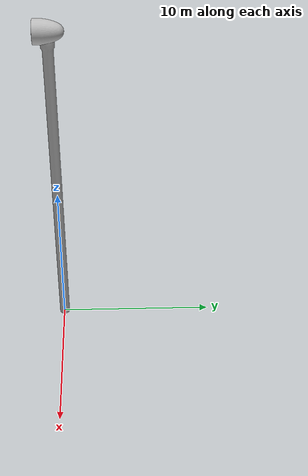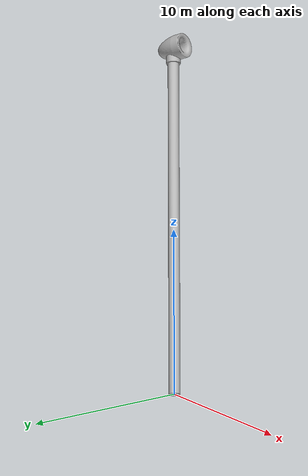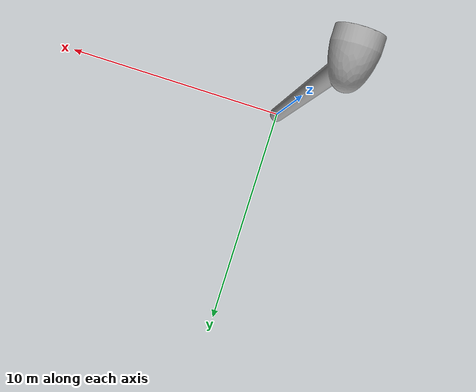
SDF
<?xml version="1.0" ?>
<sdf version="1.6">
  <model name="spinning_wind_turbine_base">
    <static>true</static>
    <link name="link">
      <pose>0 0 0 1.570796327 0 0</pose>
      <visual name="visual">
        <geometry>
          <mesh>
            <uri>model://spinning_wind_turbine_base/meshes/windmill_base.obj</uri>
            <scale>1 1 1</scale>
          </mesh>
        </geometry>
      </visual>
    </link>
  </model>
</sdf>
